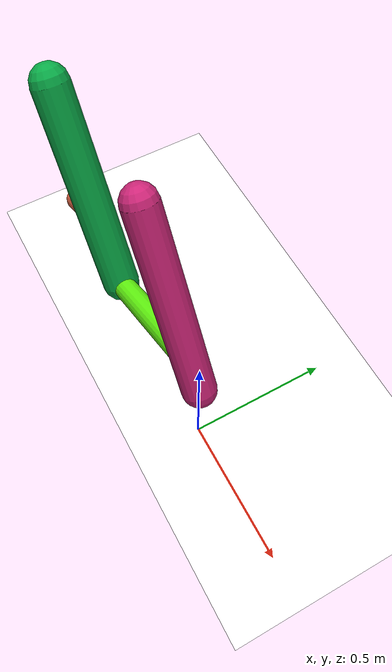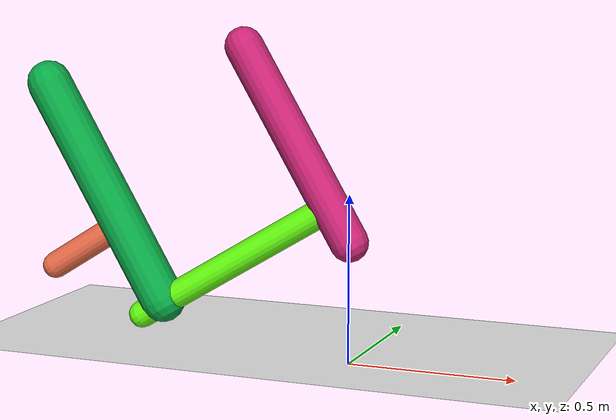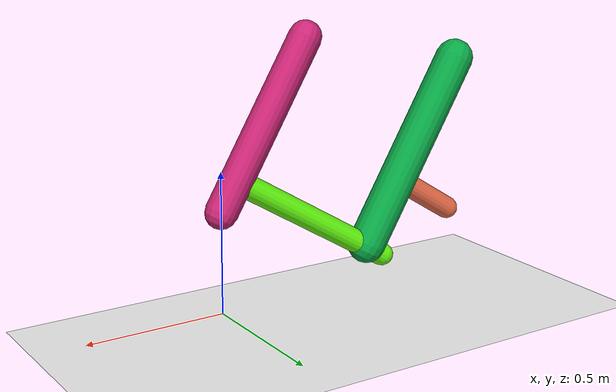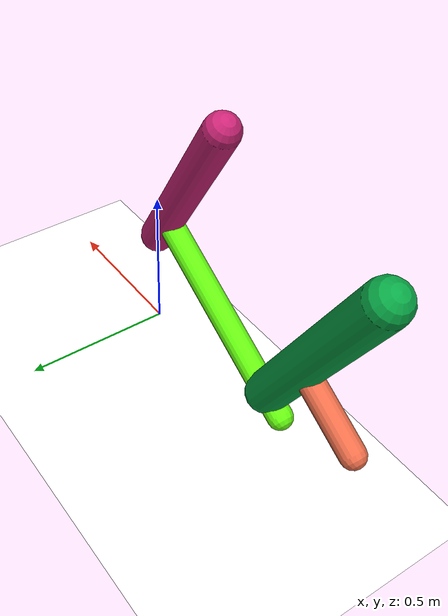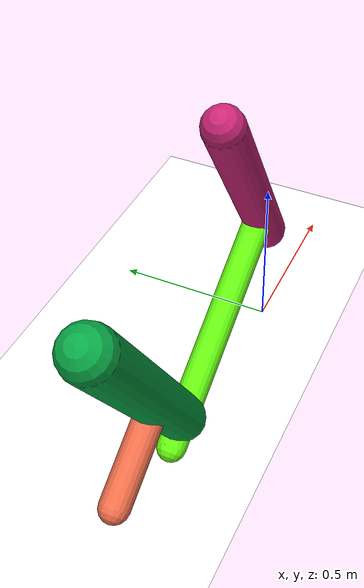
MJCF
<mujoco model="morphology">
  <option timestep="0.01"/>
  <default>
    <default class="/"/>
  </default>
  <asset>
    <texture name="texplane" type="2d" builtin="checker" rgb1="0.1 0.2 0.3" rgb2="0.2 0.3 0.4" width="300" height="300"/>
    <material name="MatPlane" class="/" texture="texplane" texrepeat="20 20" specular="1" shininess="1" reflectance="0.5"/>
  </asset>
  <worldbody>
    <light name="//unnamed_light_0" class="/" directional="true" pos="0 0 1.5" dir="0 0 -1.3" cutoff="1e+02" exponent="1" diffuse="1 1 1" specular="0.1 0.1 0.1"/>
    <geom name="ground" class="/" type="plane" size="15 15 0.5" material="MatPlane" rgba="1 1 1 1"/>
    <body name="body" pos="0 0 0.36">
      <geom name="geom0" class="/" type="capsule" contype="1" conaffinity="1" condim="3" size="0.057" rgba="0.79 0.14 0.46 1" friction="0.4 0.1 0.1" fromto="0 0 0 -0.33 0 0.56"/>
      <body name="body1" pos="-0.061 0 0.1">
        <geom name="geom1" class="/" type="capsule" contype="1" conaffinity="1" condim="3" size="0.042" rgba="0.4 1 0.061 1" friction="0.4 0.1 0.1" fromto="0 0 0 -0.61 0 -0.37"/>
        <body name="body2" pos="-0.54 0 -0.32">
          <geom name="geom2" class="/" type="capsule" contype="1" conaffinity="1" condim="3" size="0.068" rgba="0.031 0.65 0.27 1" friction="0.4 0.1 0.1" fromto="0 0 0 -0.38 0 0.65"/>
          <body name="body3" pos="-0.13 0 0.23">
            <geom name="geom3" class="/" type="capsule" contype="1" conaffinity="1" condim="3" size="0.041" rgba="0.93 0.43 0.29 1" friction="0.4 0.1 0.1" fromto="0 0 0 -0.24 0 -0.15"/>
            <joint name="joint3" class="/" type="hinge" axis="0 1 0" limited="true" stiffness="20" range="-67 67" armature="0.1" damping="2"/>
          </body>
          <joint name="joint2" class="/" type="hinge" axis="0 1 0" limited="true" stiffness="20" range="-53 53" armature="0.1" damping="2"/>
        </body>
        <joint name="joint1" class="/" type="hinge" axis="0 1 0" limited="true" stiffness="20" range="-40 40" armature="0.1" damping="2"/>
      </body>
      <joint name="rootx" class="/" type="slide" axis="1 0 0" limited="false" stiffness="0" armature="0" damping="0"/>
      <joint name="rootz" class="/" type="slide" axis="0 0 1" limited="false" stiffness="0" armature="0" damping="0"/>
      <joint name="rooty" class="/" type="hinge" axis="0 1 0" limited="false" stiffness="0" armature="0" damping="0"/>
    </body>
  </worldbody>
  <actuator>
    <motor name="motor3" class="/" ctrllimited="true" ctrlrange="-1 1" gear="1.4e+02" joint="joint3"/>
    <motor name="motor2" class="/" ctrllimited="true" ctrlrange="-1 1" gear="1.4e+02" joint="joint2"/>
    <motor name="motor1" class="/" ctrllimited="true" ctrlrange="-1 1" gear="1.4e+02" joint="joint1"/>
  </actuator>
  <sensor>
    <subtreelinvel name="velocity" body="body"/>
  </sensor>
</mujoco>
